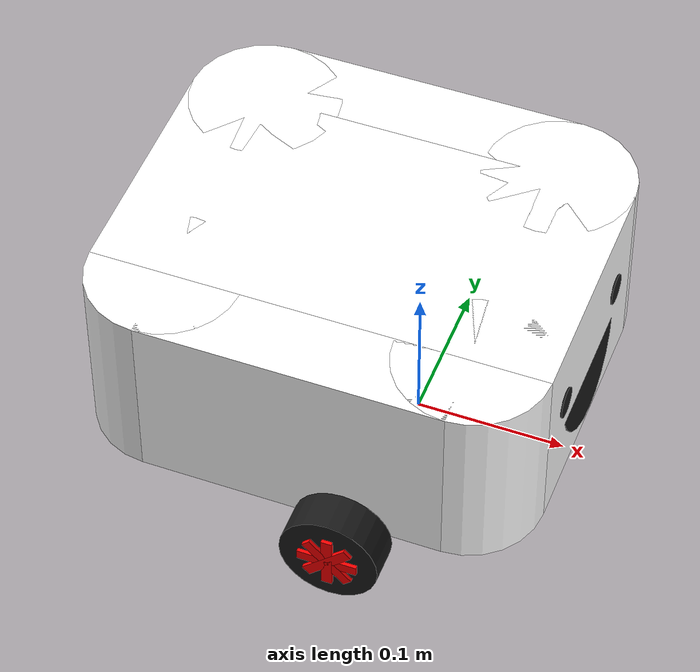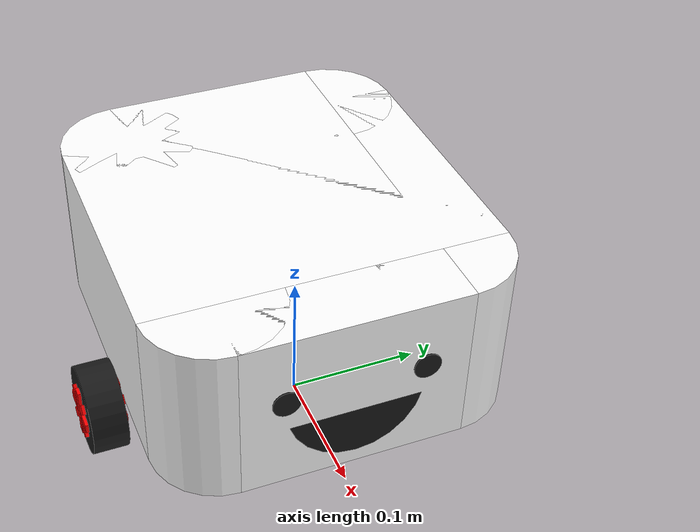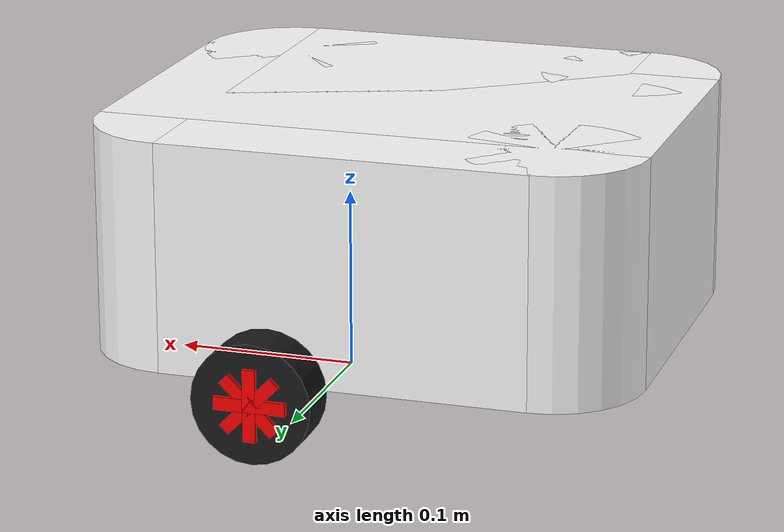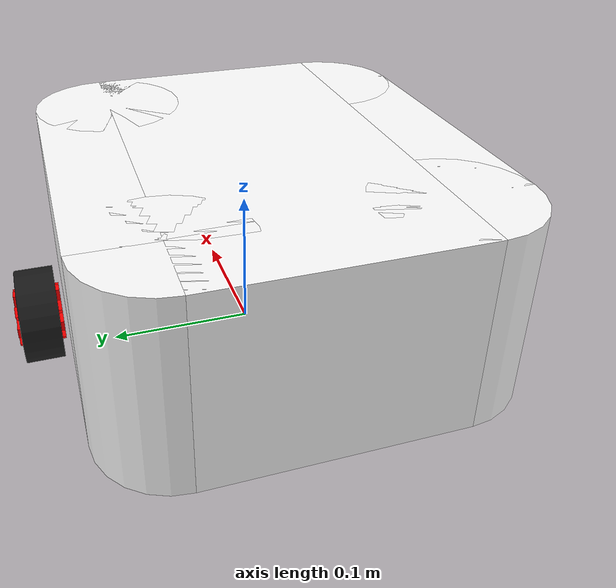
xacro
<?xml version="1.0"?>
<robot xmlns:xacro="http://www.ros.org/wiki/xacro"  name="my_diff_bot">

    <xacro:arg name="use_ros2_control" default="true"/>

    <xacro:include filename="$(find my_diff_bot)/urdf/color_materials.xacro"/>
    <xacro:include filename="$(find my_diff_bot)/urdf/part_macros.xacro"/>
    <xacro:include filename="$(find my_diff_bot)/urdf/inertia_macros.xacro"/>
    <xacro:include filename="$(find my_diff_bot)/urdf/face_macro.xacro"/>

    <xacro:property name="chassis_height" value="0.125"/>
    <xacro:property name="chassis_length" value="0.3"/>
    <xacro:property name="chassis_mass" value="2.0"/>

    <xacro:property name="wheel_seperation" value="0.3"/>
    <xacro:property name="wheel_radius" value="0.0325"/>
    <xacro:property name="wheel_width" value="0.026"/>
    <xacro:property name="wheel_spoke_width" value="0.007"/>
    <xacro:property name="wheel_mass" value="0.04"/>

    <xacro:property name="castor_wheel_radius" value="${wheel_radius/2}"/>
    <xacro:property name="castor_wheel_mass" value="0.04"/>
    <xacro:property name="chassis_width" value="${wheel_seperation-wheel_width-0.01}"/>

    <!-- BASE LINK -->

    <link name="base_link">
    </link>

    <!-- CHASSIS LINK -->

    <joint name="chassis_joint" type="fixed">
        <parent link="base_link"/>
        <child link="chassis"/>
        <origin xyz="0 0 ${wheel_radius}"/>
    </joint>

    <link name="chassis">
        <xacro:insert_box_with_fillet x="${-chassis_length/8}" y="0" z="${chassis_height/2}"
            size_x="${chassis_length}" size_y="${chassis_width}" size_z="${chassis_height}"
            fillet_radius="0.05" material="white"/>
        <collision>
           <origin xyz="${-chassis_length/8} 0 ${chassis_height/2}" rpy="0 0 0"/>
            <geometry>
                <box size="${chassis_length} ${chassis_width} ${chassis_height}"/>
            </geometry>
        </collision>
        <xacro:inertial_box mass="${chassis_mass}" x="${chassis_length}" y="${chassis_width}" z="${chassis_height}">
            <origin xyz="${-chassis_length/8} 0 ${chassis_height/2}" rpy="0 0 0"/>
        </xacro:inertial_box>
    </link>
    <gazebo reference="chassis">
        <material>Gazebo/White</material>
    </gazebo>

    <xacro:insert_face parent_name="chassis" x="${(chassis_length/8)*3}" y="0" z="${chassis_height/2}"/>

     <!-- GAZEBO WHEEL PARAMETERS -->
    <xacro:macro name="gazebo_drive_wheel_settings" params="name">
        <gazebo reference="${name}">
            <mu1>1.0</mu1>
            <mu2>1.0</mu2>
            <minDepth>0.005</minDepth>
            <material>Gazebo/FlatBlack</material>
        </gazebo>
    </xacro:macro>

    <!--  LEFT WHEEL LINK -->
    <joint name="left_wheel_joint" type="continuous">
        <parent link="chassis"/>
        <child link="left_wheel"/>
        <origin xyz="0 ${wheel_seperation/2} 0" rpy="${-pi/2} 0 0"/>
        <axis xyz="0 0 1"/>
    </joint>

    <link name="left_wheel">
        <visual>
            <origin xyz="0 0 0" rpy="0 0 0"/>
            <geometry>
                <cylinder radius="${wheel_radius}" length="${wheel_width}"/>
            </geometry>
            <material name="black"/>
        </visual>
        <collision>
           <origin xyz="0 0 0" rpy="0 0 0"/>
            <geometry>
                <sphere radius="${wheel_radius}" />
            </geometry>
        </collision>
        <xacro:inertial_cylinder mass="${wheel_mass}" length="${wheel_width}" radius="${wheel_radius}">
            <origin xyz="0 0 0" rpy="0 0 0"/>
        </xacro:inertial_cylinder>
    </link>

    <xacro:gazebo_drive_wheel_settings name="left_wheel"/>

    <joint name="left_wheel_rim_joint" type="fixed">
        <parent link="left_wheel"/>
        <child link="left_wheel_rim"/>
        <origin xyz="0 0 0" rpy="0 0 0"/>
    </joint>

    <link name="left_wheel_rim">
        <visual>
            <origin xyz="0 0 0" rpy="0 0 0"/>
            <geometry>
                <box size="${wheel_spoke_width} ${wheel_radius*1.2} ${wheel_width+0.005}"/>
            </geometry>
            <material name="red"/>
        </visual>
        <visual>
            <origin xyz="0 0 0" rpy="0 0 ${pi/2}"/>
            <geometry>
                <box size="${wheel_spoke_width} ${wheel_radius*1.2} ${wheel_width+0.005}"/>
            </geometry>
            <material name="red"/>
        </visual>
        <visual>
            <origin xyz="0 0 0" rpy="0 0 ${-pi/4}"/>
            <geometry>
                <box size="${wheel_spoke_width} ${wheel_radius*1.2} ${wheel_width+0.005}"/>
            </geometry>
            <material name="red"/>
        </visual>
        <visual>
            <origin xyz="0 0 0" rpy="0 0 ${pi/4}"/>
            <geometry>
                <box size="${wheel_spoke_width} ${wheel_radius*1.2} ${wheel_width+0.005}"/>
            </geometry>
            <material name="red"/>
        </visual>
    </link>
    <gazebo reference="left_wheel_rim">
        <material>Gazebo/Red</material>
    </gazebo>

    <!--  RIGHT WHEEL LINK -->
    <joint name="right_wheel_joint" type="continuous">
        <parent link="chassis"/>
        <child link="right_wheel"/>
        <origin xyz="0 ${-wheel_seperation/2} 0" rpy="${-pi/2} 0 0"/>
        <axis xyz="0 0 1"/>
    </joint>

    <link name="right_wheel">
        <visual>
            <origin xyz="0 0 0" rpy="0 0 0"/>
            <geometry>
                <cylinder radius="${wheel_radius}" length="${wheel_width}"/>
            </geometry>
            <material name="black"/>
        </visual>
        <collision>
           <origin xyz="0 0 0" rpy="0 0 0"/>
            <geometry>
                <sphere radius="${wheel_radius}" />
            </geometry>
        </collision>
        <xacro:inertial_cylinder mass="${wheel_mass}" length="${wheel_width}" radius="${wheel_radius}">
            <origin xyz="0 0 0" rpy="0 0 0"/>
        </xacro:inertial_cylinder>
    </link>

    <xacro:gazebo_drive_wheel_settings name="right_wheel"/>

    <joint name="right_wheel_rim_joint" type="fixed">
        <parent link="right_wheel"/>
        <child link="right_wheel_rim"/>
        <origin xyz="0 0 0" rpy="0 0 0"/>
    </joint>

    <link name="right_wheel_rim">
        <visual>
            <origin xyz="0 0 0" rpy="0 0 0"/>
            <geometry>
                <box size="${wheel_spoke_width} ${wheel_radius*1.2} ${wheel_width+0.005}"/>
            </geometry>
            <material name="red"/>
        </visual>
        <visual>
            <origin xyz="0 0 0" rpy="0 0 ${pi/2}"/>
            <geometry>
                <box size="${wheel_spoke_width} ${wheel_radius*1.2} ${wheel_width+0.005}"/>
            </geometry>
            <material name="red"/>
        </visual>
        <visual>
            <origin xyz="0 0 0" rpy="0 0 ${-pi/4}"/>
            <geometry>
                <box size="${wheel_spoke_width} ${wheel_radius*1.2} ${wheel_width+0.005}"/>
            </geometry>
            <material name="red"/>
        </visual>
        <visual>
            <origin xyz="0 0 0" rpy="0 0 ${pi/4}"/>
            <geometry>
                <box size="${wheel_spoke_width} ${wheel_radius*1.2} ${wheel_width+0.005}"/>
            </geometry>
            <material name="red"/>
        </visual>
    </link>
    <gazebo reference="right_wheel_rim">
        <material>Gazebo/Red</material>
    </gazebo>

    <!--  castor WHEEL LINK -->

    <joint name="castor_wheel_joint" type="fixed">
        <parent link="chassis"/>
        <child link="castor_wheel"/>
        <origin xyz="${-chassis_length/2} 0 ${-wheel_radius/2}"/>
    </joint>

    <link name="castor_wheel">
        <visual>
            <origin xyz="0 0 0" rpy="0 0 0"/>
            <geometry>
                <sphere radius="${wheel_radius/2}" />
            </geometry>
            <material name="silver"/>
        </visual>
        <collision>
           <origin xyz="0 0 0" rpy="0 0 0"/>
            <geometry>
                <sphere radius="${wheel_radius/2}" />
            </geometry>
        </collision>
        <xacro:inertial_sphere mass="${castor_wheel_mass}" radius="${wheel_radius/2}">
            <origin xyz="0 0 0" rpy="0 0 0"/>
        </xacro:inertial_sphere>
    </link>

    <gazebo reference="castor_wheel">
        <mu1>0.001</mu1>
        <mu2>0.001</mu2>
        <material>Gazebo/Silver</material>
    </gazebo>

    <xacro:if value="$(arg use_ros2_control)">
        <xacro:include filename="$(find my_diff_bot)/urdf/ros_controllers.xacro"/>
    </xacro:if>
    <xacro:unless value="$(arg use_ros2_control)">
    </xacro:unless>

</robot>

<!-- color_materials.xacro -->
<robot name="my_diff_bot" xmlns:xacro="http://www.ros.org/wiki/xacro" >

    <material name="white">
        <color rgba="1 1 1 1" />
    </material>

    <material name="grey">
        <color rgba="0.25 0.25 0.25 1"/>
    </material>

    <material name="orange">
        <color rgba="1 0.55 0 1"/>
    </material>

    <material name="blue">
        <color rgba="0.2 0.2 1 1"/>
    </material>

    <material name="red">
        <color rgba="1 0 0 1"/>
    </material>

    <material name="black">
        <color rgba="0.1 0.1 0.1 1"/>
    </material>

    <material name="silver">
        <color rgba="0.6 0.6 0.6 1"/>
    </material>

</robot>

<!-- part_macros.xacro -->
<robot name="my_diff_bot" xmlns:xacro="http://www.ros.org/wiki/xacro" >

    <xacro:macro name="insert_box_with_fillet" params="x y z size_x size_y size_z fillet_radius material">
            <!-- logitudinal box -->
            <visual>
                <origin xyz="${x} ${y} ${z}" rpy="0 0 0"/>
                <geometry>
                    <box size="${size_x} ${size_y-(2*fillet_radius)} ${size_z}"/>
                </geometry>
                <material name="${material}"/>
            </visual>
            <!-- lateral box -->
            <visual>
                <origin xyz="${x} ${y} ${z}" rpy="0 0 0"/>
                <geometry>
                    <box size="${size_x-(2*fillet_radius)} ${size_y} ${size_z}"/>
                </geometry>
                <material name="${material}"/>
            </visual>
            <!-- cylinder1 -->
            <visual>
                <origin xyz="${x+((size_x/2)-fillet_radius)} ${y+((size_y/2)-fillet_radius)} ${z}" rpy="0 0 0"/>
                <geometry>
                    <cylinder length="${size_z}" radius="${fillet_radius}"/>
                </geometry>
                <material name="${material}"/>
            </visual>
            <!-- cylinder2 -->
            <visual>
                <origin xyz="${x+((size_x/2)-fillet_radius)} ${y-((size_y/2)-fillet_radius)} ${z}" rpy="0 0 0"/>
                <geometry>
                    <cylinder length="${size_z}" radius="${fillet_radius}"/>
                </geometry>
                <material name="${material}"/>
            </visual>
            <!-- cylinder3 -->
            <visual>
                <origin xyz="${x-((size_x/2)-fillet_radius)} ${y+((size_y/2)-fillet_radius)} ${z}" rpy="0 0 0"/>
                <geometry>
                    <cylinder length="${size_z}" radius="${fillet_radius}"/>
                </geometry>
                <material name="${material}"/>
            </visual>
            <!-- cylinder4 -->
            <visual>
                <origin xyz="${x-((size_x/2)-fillet_radius)} ${y-((size_y/2)-fillet_radius)} ${z}" rpy="0 0 0"/>
                <geometry>
                    <cylinder length="${size_z}" radius="${fillet_radius}"/>
                </geometry>
                <material name="${material}"/>
            </visual>
    </xacro:macro>

    <xacro:macro name="insert_drive_wheel">
        <visual>
            <origin xyz="0 0 0" rpy="0 0 0"/>
            <geometry>
                <cylinder radius="0.065" length="0.06"/>
            </geometry>
            <material name="black"/>
        </visual>
        <collision>
           <origin xyz="0 0 0" rpy="0 0 0"/>
            <geometry>
                <cylinder radius="0.065" length="0.06"/>
            </geometry>
        </collision>
        <xacro:inertial_cylinder mass="0.2" length="0.06" radius="0.065">
            <origin xyz="0 0 0" rpy="0 0 0"/>
        </xacro:inertial_cylinder>
    </xacro:macro>

    <xacro:macro name="insert_wheel_rim">
        <visual>
            <origin xyz="0 0 0" rpy="0 0 0"/>
            <geometry>
                <box size="0.01 0.07 0.0605"/>
            </geometry>
            <material name="red"/>
        </visual>
        <visual>
            <origin xyz="0 0 0" rpy="0 0 ${pi/2}"/>
            <geometry>
                <box size="0.01 0.07 0.0605"/>
            </geometry>
            <material name="red"/>
        </visual>
        <visual>
            <origin xyz="0 0 0" rpy="0 0 ${-pi/4}"/>
            <geometry>
                <box size="0.01 0.07 0.0605"/>
            </geometry>
            <material name="red"/>
        </visual>
        <visual>
            <origin xyz="0 0 0" rpy="0 0 ${pi/4}"/>
            <geometry>
                <box size="0.01 0.07 0.0605"/>
            </geometry>
            <material name="red"/>
        </visual>
    </xacro:macro>

</robot>

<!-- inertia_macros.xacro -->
<robot name="my_diff_bot" xmlns:xacro="http://www.ros.org/wiki/xacro" >

    <!-- Specify some standard inertial calculations https://en.wikipedia.org/wiki/List_of_moments_of_inertia -->
    <!-- These make use of xacro's mathematical functionality -->

    <!-- ################### inertia macros  ############################-->

    <xacro:macro name="inertial_sphere" params="mass radius *origin">
        <inertial>
            <xacro:insert_block name="origin"/>
            <mass value="${mass}" />
            <inertia ixx="${(2/5) * mass * (radius*radius)}" ixy="0.0" ixz="0.0"
                    iyy="${(2/5) * mass * (radius*radius)}" iyz="0.0"
                    izz="${(2/5) * mass * (radius*radius)}" />
        </inertial>
    </xacro:macro>

    <xacro:macro name="inertial_box" params="mass x y z *origin">
        <inertial>
            <xacro:insert_block name="origin"/>
            <mass value="${mass}" />
            <inertia ixx="${(1/12) * mass * (y*y+z*z)}" ixy="0.0" ixz="0.0"
                    iyy="${(1/12) * mass * (x*x+z*z)}" iyz="0.0"
                    izz="${(1/12) * mass * (x*x+y*y)}" />
        </inertial>
    </xacro:macro>

    <xacro:macro name="inertial_cylinder" params="mass length radius *origin">
        <inertial>
            <xacro:insert_block name="origin"/>
            <mass value="${mass}" />
            <inertia ixx="${(1/12) * mass * (3*radius*radius + length*length)}" ixy="0.0" ixz="0.0"
                    iyy="${(1/12) * mass * (3*radius*radius + length*length)}" iyz="0.0"
                    izz="${(1/2) * mass * (radius*radius)}" />
        </inertial>
    </xacro:macro>

</robot>

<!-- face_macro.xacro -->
<robot name="my_diff_bot" xmlns:xacro="http://www.ros.org/wiki/xacro" >

    <xacro:macro name="insert_face" params="parent_name x y z">
        <joint name="face_joint" type="fixed">
            <parent link="${parent_name}"/>
            <child link="face_link"/>
            <origin xyz="${x} ${y} ${z}" rpy="0 0 0"/>
        </joint>

        <link name="face_link">
            <visual>
                <origin xyz="0 0.05 0.01" rpy="0 ${pi/2} 0"/>
                <geometry>
                    <cylinder radius="0.01" length="0.002"/>
                </geometry>
                <material name="black"/>
            </visual>

            <visual>
                <origin xyz="0 -0.05 0.01" rpy="0 ${pi/2} 0"/>
                <geometry>
                    <cylinder radius="0.01" length="0.002"/>
                </geometry>
                <material name="black"/>
            </visual>

            <visual>
                <origin xyz="-0.011 0 -0.00" rpy="0 ${1.5} 0"/>
                <geometry>
                    <cylinder radius="0.05" length="0.02"/>
                </geometry>
                <material name="black"/>
            </visual>
        </link>

        <gazebo reference="face_link">
            <material>Gazebo/FlatBlack</material>
        </gazebo>
    </xacro:macro>

</robot>
